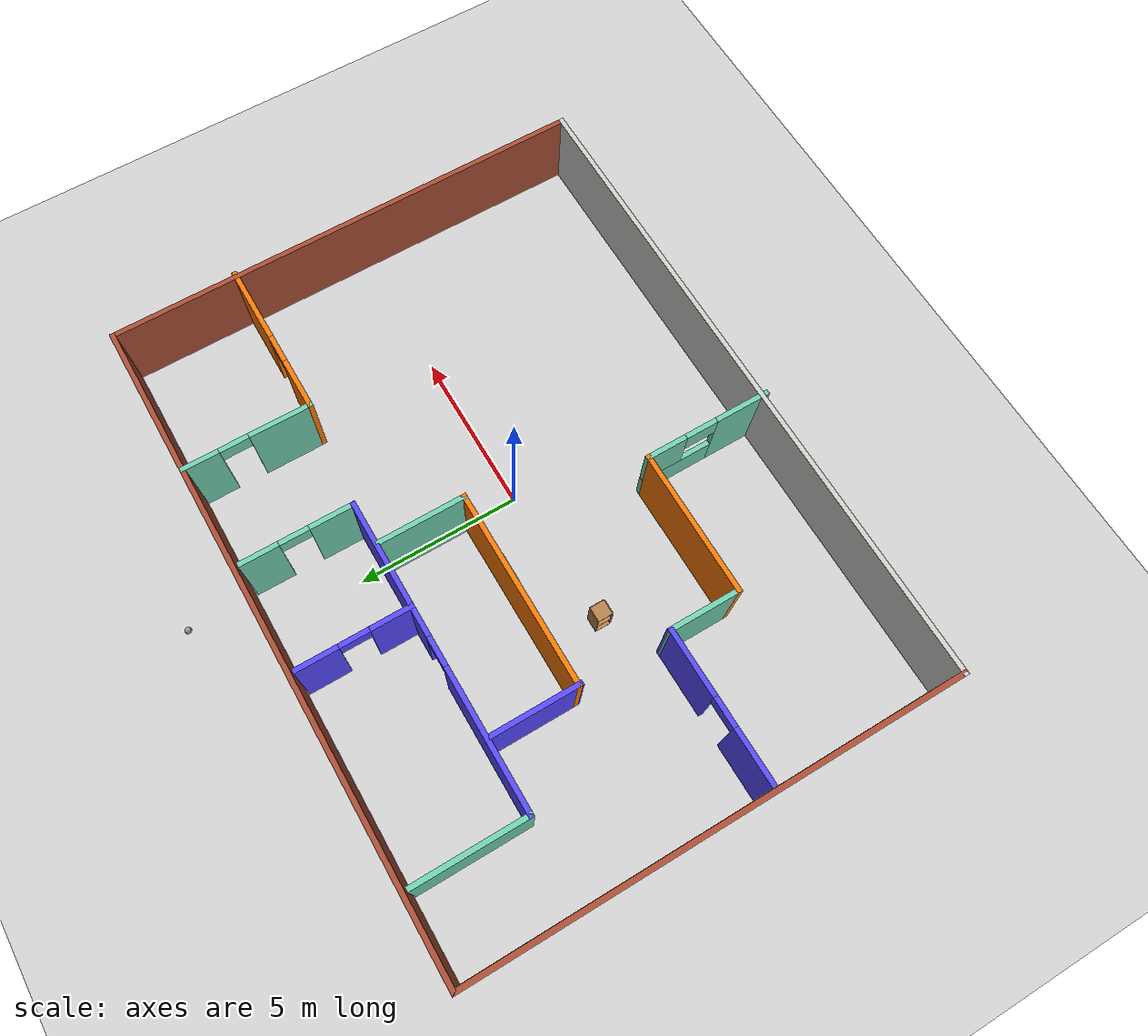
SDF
<sdf version="1.6">
 <world name="default">
  <plugin name="welcome_message" filename="libwelcome_message.so"/>
  <light name="sun" type="directional">
   <pose>0 0 10 0 -0 0</pose>
   <diffuse>0.8 0.8 0.8 1</diffuse>
   <specular>0.2 0.2 0.2 1</specular>
   <attenuation>
    <range>1000</range>
    <constant>0.9</constant>
    <linear>0.01</linear>
    <quadratic>0.001</quadratic>
   </attenuation>
   <direction>-0.5 0.1 -0.9</direction>
  </light>
  <model name="ground_plane">
   <static>1</static>
   <link name="link">
    <collision name="collision">
     <geometry><plane><normal>0 0 1</normal><size>100 100</size></plane></geometry>
     <surface>
      <contact><collide_bitmask>65535</collide_bitmask></contact>
      <friction><ode><mu>100</mu><mu2>50</mu2></ode></friction>
     </surface>
    </collision>
    <visual name="visual">
     <cast_shadows>0</cast_shadows>
     <geometry><plane><normal>0 0 1</normal><size>100 100</size></plane></geometry>
     <material>
      <script><uri>file://media/materials/scripts/gazebo.material</uri><name>Gazebo/Grey</name></script>
     </material>
    </visual>
   </link>
  </model>
  <gravity>0 0 -9.8</gravity>
  <magnetic_field>6e-06 2.3e-05 -4.2e-05</magnetic_field>
  <atmosphere type="adiabatic"/>
  <physics name="default_physics" default="0" type="ode">
   <max_step_size>0.001</max_step_size>
   <real_time_factor>1</real_time_factor>
   <real_time_update_rate>1000</real_time_update_rate>
  </physics>
  <scene><ambient>0.4 0.4 0.4 1</ambient><background>0.7 0.7 0.7 1</background><shadows>1</shadows></scene>
  <spherical_coordinates>
   <surface_model>EARTH_WGS84</surface_model>
   <latitude_deg>0</latitude_deg>
   <longitude_deg>0</longitude_deg>
   <elevation>0</elevation>
   <heading_deg>0</heading_deg>
  </spherical_coordinates>
  <model name="model">
   <pose>-0.67682 0.34069 0 0 -0 0</pose>
   <link name="Door_2">
    <collision name="Door_2_Collision">
     <geometry><box><size>0.9 0.17 2</size></box></geometry>
     <pose>0 0 1 0 -0 0</pose>
    </collision>
    <visual name="Door_2_Visual">
     <pose>0 0 1 0 -0 0</pose>
     <geometry><box><size>0.9 0.17 2</size></box></geometry>
     <material>
      <script><uri>file://media/materials/scripts/gazebo.material</uri><name>Gazebo/Grey</name></script>
     </material>
    </visual>
    <pose>-3.49247 -3.75318 0 0 -0 0</pose>
   </link>
   <link name="Door_6">
    <collision name="Door_6_Collision">
     <geometry><box><size>0.9 0.17 2</size></box></geometry>
     <pose>0 0 1 0 -0 0</pose>
    </collision>
    <visual name="Door_6_Visual">
     <pose>0 0 1 0 -0 0</pose>
     <geometry><box><size>0.9 0.17 2</size></box></geometry>
     <material>
      <script><uri>file://media/materials/scripts/gazebo.material</uri><name>Gazebo/Grey</name></script>
     </material>
    </visual>
    <pose>-1.63965 1.18311 0 0 -0 0</pose>
   </link>
   <link name="Wall_0">
    <collision name="Wall_0_Collision">
     <geometry><box><size>15 0.15 2.5</size></box></geometry>
     <pose>0 0 1.25 0 -0 0</pose>
    </collision>
    <visual name="Wall_0_Visual">
     <pose>0 0 1.25 0 -0 0</pose>
     <geometry><box><size>15 0.15 2.5</size></box></geometry>
     <material>
      <script><uri>file://media/materials/scripts/gazebo.material</uri><name>Gazebo/Bricks</name></script>
      <ambient>1 1 1 1</ambient>
     </material>
     <meta><layer>0</layer></meta>
    </visual>
    <pose>-9.97782 0.060077 0 0 0 -1.5708</pose>
   </link>
   <link name="Wall_11">
    <pose>7.55283 3.6209 0 0 -0 3.14159</pose>
    <visual name="Wall_11_Visual_0">
     <pose>-1.27505 0 1.25 0 -0 0</pose>
     <geometry><box><size>2.4499 0.15 2.5</size></box></geometry>
     <material>
      <script><uri>file://media/materials/scripts/gazebo.material</uri><name>Gazebo/Grey</name></script>
      <ambient>0.996078 0.47451 0.0196078 1</ambient>
     </material>
     <meta><layer>0</layer></meta>
    </visual>
    <collision name="Wall_11_Collision_0">
     <geometry><box><size>2.4499 0.15 2.5</size></box></geometry>
     <pose>-1.27505 0 1.25 0 -0 0</pose>
    </collision>
    <visual name="Wall_11_Visual_1">
     <pose>1.67495 0 1.25 0 -0 0</pose>
     <geometry><box><size>1.6501 0.15 2.5</size></box></geometry>
     <material>
      <script><uri>file://media/materials/scripts/gazebo.material</uri><name>Gazebo/Grey</name></script>
      <ambient>0.996078 0.47451 0.0196078 1</ambient>
     </material>
     <meta><layer>0</layer></meta>
    </visual>
    <collision name="Wall_11_Collision_1">
     <geometry><box><size>1.6501 0.15 2.5</size></box></geometry>
     <pose>1.67495 0 1.25 0 -0 0</pose>
    </collision>
    <visual name="Wall_11_Visual_2">
     <pose>0.399904 0 2.25 0 -0 0</pose>
     <geometry><box><size>0.9 0.15 0.5</size></box></geometry>
     <material>
      <script><uri>file://media/materials/scripts/gazebo.material</uri><name>Gazebo/Grey</name></script>
      <ambient>0.996078 0.47451 0.0196078 1</ambient>
     </material>
     <meta><layer>0</layer></meta>
    </visual>
    <collision name="Wall_11_Collision_2">
     <geometry><box><size>0.9 0.15 0.5</size></box></geometry>
     <pose>0.399904 0 2.25 0 -0 0</pose>
    </collision>
   </link>
   <link name="Wall_18">
    <pose>5.12784 5.5459 0 0 -0 1.5708</pose>
    <visual name="Wall_18_Visual_0">
     <pose>-1.02285 0 1.25 0 -0 0</pose>
     <geometry><box><size>1.9543 0.15 2.5</size></box></geometry>
     <material>
      <script><uri>file://media/materials/scripts/gazebo.material</uri><name>Gazebo/Grey</name></script>
      <ambient>0.435294 0.796078 0.67451 1</ambient>
     </material>
     <meta><layer>0</layer></meta>
    </visual>
    <collision name="Wall_18_Collision_0">
     <geometry><box><size>1.9543 0.15 2.5</size></box></geometry>
     <pose>-1.02285 0 1.25 0 -0 0</pose>
    </collision>
    <visual name="Wall_18_Visual_1">
     <pose>1.42715 0 1.25 0 -0 0</pose>
     <geometry><box><size>1.1457 0.15 2.5</size></box></geometry>
     <material>
      <script><uri>file://media/materials/scripts/gazebo.material</uri><name>Gazebo/Grey</name></script>
      <ambient>0.435294 0.796078 0.67451 1</ambient>
     </material>
     <meta><layer>0</layer></meta>
    </visual>
    <collision name="Wall_18_Collision_1">
     <geometry><box><size>1.1457 0.15 2.5</size></box></geometry>
     <pose>1.42715 0 1.25 0 -0 0</pose>
    </collision>
    <visual name="Wall_18_Visual_2">
     <pose>0.404303 0 2.25 0 -0 0</pose>
     <geometry><box><size>0.9 0.15 0.5</size></box></geometry>
     <material>
      <script><uri>file://media/materials/scripts/gazebo.material</uri><name>Gazebo/Grey</name></script>
      <ambient>0.435294 0.796078 0.67451 1</ambient>
     </material>
     <meta><layer>0</layer></meta>
    </visual>
    <collision name="Wall_18_Collision_2">
     <geometry><box><size>0.9 0.15 0.5</size></box></geometry>
     <pose>0.404303 0 2.25 0 -0 0</pose>
    </collision>
   </link>
   <link name="Wall_22">
    <pose>-0.922889 -5.56018 0 0 -0 1.5708</pose>
    <visual name="Wall_22_Visual_0">
     <pose>-1.14184 0 1.25 0 -0 0</pose>
     <geometry><box><size>1.71632 0.15 2.5</size></box></geometry>
     <material>
      <script><uri>file://media/materials/scripts/gazebo.material</uri><name>Gazebo/Grey</name></script>
      <ambient>0.435294 0.796078 0.67451 1</ambient>
     </material>
     <meta><layer>0</layer></meta>
    </visual>
    <collision name="Wall_22_Collision_0">
     <geometry><box><size>1.71632 0.15 2.5</size></box></geometry>
     <pose>-1.14184 0 1.25 0 -0 0</pose>
    </collision>
    <visual name="Wall_22_Visual_1">
     <pose>0.858158 0 0.5 0 -0 0</pose>
     <geometry><box><size>2.28368 0.15 1</size></box></geometry>
     <material>
      <script><uri>file://media/materials/scripts/gazebo.material</uri><name>Gazebo/Grey</name></script>
      <ambient>0.435294 0.796078 0.67451 1</ambient>
     </material>
     <meta><layer>0</layer></meta>
    </visual>
    <collision name="Wall_22_Collision_1">
     <geometry><box><size>2.28368 0.15 1</size></box></geometry>
     <pose>0.858158 0 0.5 0 -0 0</pose>
    </collision>
    <visual name="Wall_22_Visual_2">
     <pose>1.35816 0 1.75 0 -0 0</pose>
     <geometry><box><size>1.28368 0.15 1.5</size></box></geometry>
     <material>
      <script><uri>file://media/materials/scripts/gazebo.material</uri><name>Gazebo/Grey</name></script>
      <ambient>0.435294 0.796078 0.67451 1</ambient>
     </material>
     <meta><layer>0</layer></meta>
    </visual>
    <collision name="Wall_22_Collision_2">
     <geometry><box><size>1.28368 0.15 1.5</size></box></geometry>
     <pose>1.35816 0 1.75 0 -0 0</pose>
    </collision>
    <visual name="Wall_22_Visual_3">
     <pose>0.216316 0 2.15 0 -0 0</pose>
     <geometry><box><size>1 0.15 0.7</size></box></geometry>
     <material>
      <script><uri>file://media/materials/scripts/gazebo.material</uri><name>Gazebo/Grey</name></script>
      <ambient>0.435294 0.796078 0.67451 1</ambient>
     </material>
     <meta><layer>0</layer></meta>
    </visual>
    <collision name="Wall_22_Collision_3">
     <geometry><box><size>1 0.15 0.7</size></box></geometry>
     <pose>0.216316 0 2.15 0 -0 0</pose>
    </collision>
   </link>
   <link name="Wall_23">
    <collision name="Wall_23_Collision">
     <geometry><box><size>4.5 0.15 2.5</size></box></geometry>
     <pose>0 0 1.25 0 -0 0</pose>
    </collision>
    <visual name="Wall_23_Visual">
     <pose>0 0 1.25 0 -0 0</pose>
     <geometry><box><size>4.5 0.15 2.5</size></box></geometry>
     <material>
      <script><uri>file://media/materials/scripts/gazebo.material</uri><name>Gazebo/Grey</name></script>
      <ambient>0.996078 0.47451 0.0196078 1</ambient>
     </material>
     <meta><layer>0</layer></meta>
    </visual>
    <pose>-3.09789 -3.63518 0 0 -0 3.14159</pose>
   </link>
   <link name="Wall_24">
    <collision name="Wall_24_Collision">
     <geometry><box><size>2.25 0.15 2.5</size></box></geometry>
     <pose>0 0 1.25 0 -0 0</pose>
    </collision>
    <visual name="Wall_24_Visual">
     <pose>0 0 1.25 0 -0 0</pose>
     <geometry><box><size>2.25 0.15 2.5</size></box></geometry>
     <material>
      <script><uri>file://media/materials/scripts/gazebo.material</uri><name>Gazebo/Grey</name></script>
      <ambient>0.435294 0.796078 0.67451 1</ambient>
     </material>
     <meta><layer>0</layer></meta>
    </visual>
    <pose>-5.27289 -2.58518 0 0 -0 1.5708</pose>
   </link>
   <link name="Wall_25">
    <pose>-7.5423 -1.55522 0 0 0 -3.13277</pose>
    <visual name="Wall_25_Visual_0">
     <pose>-1.29743 0 1.25 0 -0 0</pose>
     <geometry><box><size>2.09415 0.15 2.5</size></box></geometry>
     <material>
      <script><uri>file://media/materials/scripts/gazebo.material</uri><name>Gazebo/Grey</name></script>
      <ambient>0.333333 0.286275 1 1</ambient>
     </material>
     <meta><layer>0</layer></meta>
    </visual>
    <collision name="Wall_25_Collision_0">
     <geometry><box><size>2.09415 0.15 2.5</size></box></geometry>
     <pose>-1.29743 0 1.25 0 -0 0</pose>
    </collision>
    <visual name="Wall_25_Visual_1">
     <pose>1.49707 0 1.25 0 -0 0</pose>
     <geometry><box><size>1.69485 0.15 2.5</size></box></geometry>
     <material>
      <script><uri>file://media/materials/scripts/gazebo.material</uri><name>Gazebo/Grey</name></script>
      <ambient>0.333333 0.286275 1 1</ambient>
     </material>
     <meta><layer>0</layer></meta>
    </visual>
    <collision name="Wall_25_Collision_1">
     <geometry><box><size>1.69485 0.15 2.5</size></box></geometry>
     <pose>1.49707 0 1.25 0 -0 0</pose>
    </collision>
    <visual name="Wall_25_Visual_2">
     <pose>0.199648 0 2.25 0 -0 0</pose>
     <geometry><box><size>0.9 0.15 0.5</size></box></geometry>
     <material>
      <script><uri>file://media/materials/scripts/gazebo.material</uri><name>Gazebo/Grey</name></script>
      <ambient>0.333333 0.286275 1 1</ambient>
     </material>
     <meta><layer>0</layer></meta>
    </visual>
    <collision name="Wall_25_Collision_2">
     <geometry><box><size>0.9 0.15 0.5</size></box></geometry>
     <pose>0.199648 0 2.25 0 -0 0</pose>
    </collision>
   </link>
   <link name="Wall_27">
    <collision name="Wall_27_Collision">
     <geometry><box><size>3.5 0.15 2.5</size></box></geometry>
     <pose>0 0 1.25 0 -0 0</pose>
    </collision>
    <visual name="Wall_27_Visual">
     <pose>0 0 1.25 0 -0 0</pose>
     <geometry><box><size>3.5 0.15 2.5</size></box></geometry>
     <material>
      <script><uri>file://media/materials/scripts/gazebo.material</uri><name>Gazebo/Grey</name></script>
      <ambient>0.435294 0.796078 0.67451 1</ambient>
     </material>
     <meta><layer>0</layer></meta>
    </visual>
    <pose>-7.44677 5.60899 0 0 0 -1.5708</pose>
   </link>
   <link name="Wall_28">
    <pose>-2.77177 3.93399 0 0 -0 0</pose>
    <visual name="Wall_28_Visual_0">
     <pose>-2.58907 0 1.25 0 -0 0</pose>
     <geometry><box><size>4.32185 0.15 2.5</size></box></geometry>
     <material>
      <script><uri>file://media/materials/scripts/gazebo.material</uri><name>Gazebo/Grey</name></script>
      <ambient>0.333333 0.286275 1 1</ambient>
     </material>
     <meta><layer>0</layer></meta>
    </visual>
    <collision name="Wall_28_Collision_0">
     <geometry><box><size>4.32185 0.15 2.5</size></box></geometry>
     <pose>-2.58907 0 1.25 0 -0 0</pose>
    </collision>
    <visual name="Wall_28_Visual_1">
     <pose>2.61093 0 1.25 0 -0 0</pose>
     <geometry><box><size>4.27815 0.15 2.5</size></box></geometry>
     <material>
      <script><uri>file://media/materials/scripts/gazebo.material</uri><name>Gazebo/Grey</name></script>
      <ambient>0.333333 0.286275 1 1</ambient>
     </material>
     <meta><layer>0</layer></meta>
    </visual>
    <collision name="Wall_28_Collision_1">
     <geometry><box><size>4.27815 0.15 2.5</size></box></geometry>
     <pose>2.61093 0 1.25 0 -0 0</pose>
    </collision>
    <visual name="Wall_28_Visual_2">
     <pose>0.021854 0 2.25 0 -0 0</pose>
     <geometry><box><size>0.9 0.15 0.5</size></box></geometry>
     <material>
      <script><uri>file://media/materials/scripts/gazebo.material</uri><name>Gazebo/Grey</name></script>
      <ambient>0.333333 0.286275 1 1</ambient>
     </material>
     <meta><layer>0</layer></meta>
    </visual>
    <collision name="Wall_28_Collision_2">
     <geometry><box><size>0.9 0.15 0.5</size></box></geometry>
     <pose>0.021854 0 2.25 0 -0 0</pose>
    </collision>
   </link>
   <link name="Wall_37">
    <pose>1.90323 5.60899 0 0 -0 1.5708</pose>
    <visual name="Wall_37_Visual_0">
     <pose>-1.04614 0 1.25 0 -0 0</pose>
     <geometry><box><size>1.40772 0.15 2.5</size></box></geometry>
     <material>
      <script><uri>file://media/materials/scripts/gazebo.material</uri><name>Gazebo/Grey</name></script>
      <ambient>0.435294 0.796078 0.67451 1</ambient>
     </material>
     <meta><layer>0</layer></meta>
    </visual>
    <collision name="Wall_37_Collision_0">
     <geometry><box><size>1.40772 0.15 2.5</size></box></geometry>
     <pose>-1.04614 0 1.25 0 -0 0</pose>
    </collision>
    <visual name="Wall_37_Visual_1">
     <pose>1.15386 0 1.25 0 -0 0</pose>
     <geometry><box><size>1.19228 0.15 2.5</size></box></geometry>
     <material>
      <script><uri>file://media/materials/scripts/gazebo.material</uri><name>Gazebo/Grey</name></script>
      <ambient>0.435294 0.796078 0.67451 1</ambient>
     </material>
     <meta><layer>0</layer></meta>
    </visual>
    <collision name="Wall_37_Collision_1">
     <geometry><box><size>1.19228 0.15 2.5</size></box></geometry>
     <pose>1.15386 0 1.25 0 -0 0</pose>
    </collision>
    <visual name="Wall_37_Visual_2">
     <pose>0.107722 0 2.25 0 -0 0</pose>
     <geometry><box><size>0.9 0.15 0.5</size></box></geometry>
     <material>
      <script><uri>file://media/materials/scripts/gazebo.material</uri><name>Gazebo/Grey</name></script>
      <ambient>0.435294 0.796078 0.67451 1</ambient>
     </material>
     <meta><layer>0</layer></meta>
    </visual>
    <collision name="Wall_37_Collision_2">
     <geometry><box><size>0.9 0.15 0.5</size></box></geometry>
     <pose>0.107722 0 2.25 0 -0 0</pose>
    </collision>
   </link>
   <link name="Wall_39">
    <pose>-1.36924 5.61751 0 0 -0 1.5708</pose>
    <visual name="Wall_39_Visual_0">
     <pose>-1.1015 0 1.25 0 -0 0</pose>
     <geometry><box><size>1.297 0.15 2.5</size></box></geometry>
     <material>
      <script><uri>file://media/materials/scripts/gazebo.material</uri><name>Gazebo/Grey</name></script>
      <ambient>0.333333 0.286275 1 1</ambient>
     </material>
     <meta><layer>0</layer></meta>
    </visual>
    <collision name="Wall_39_Collision_0">
     <geometry><box><size>1.297 0.15 2.5</size></box></geometry>
     <pose>-1.1015 0 1.25 0 -0 0</pose>
    </collision>
    <visual name="Wall_39_Visual_1">
     <pose>1.0985 0 1.25 0 -0 0</pose>
     <geometry><box><size>1.303 0.15 2.5</size></box></geometry>
     <material>
      <script><uri>file://media/materials/scripts/gazebo.material</uri><name>Gazebo/Grey</name></script>
      <ambient>0.333333 0.286275 1 1</ambient>
     </material>
     <meta><layer>0</layer></meta>
    </visual>
    <collision name="Wall_39_Collision_1">
     <geometry><box><size>1.303 0.15 2.5</size></box></geometry>
     <pose>1.0985 0 1.25 0 -0 0</pose>
    </collision>
    <visual name="Wall_39_Visual_2">
     <pose>-0.002999 0 2.25 0 -0 0</pose>
     <geometry><box><size>0.9 0.15 0.5</size></box></geometry>
     <material>
      <script><uri>file://media/materials/scripts/gazebo.material</uri><name>Gazebo/Grey</name></script>
      <ambient>0.333333 0.286275 1 1</ambient>
     </material>
     <meta><layer>0</layer></meta>
    </visual>
    <collision name="Wall_39_Collision_2">
     <geometry><box><size>0.9 0.15 0.5</size></box></geometry>
     <pose>-0.002999 0 2.25 0 -0 0</pose>
    </collision>
   </link>
   <link name="Wall_43">
    <collision name="Wall_43_Collision">
     <geometry><box><size>2.75 0.15 2.5</size></box></geometry>
     <pose>0 0 1.25 0 -0 0</pose>
    </collision>
    <visual name="Wall_43_Visual">
     <pose>0 0 1.25 0 -0 0</pose>
     <geometry><box><size>2.75 0.15 2.5</size></box></geometry>
     <material>
      <script><uri>file://media/materials/scripts/gazebo.material</uri><name>Gazebo/Grey</name></script>
      <ambient>0.435294 0.796078 0.67451 1</ambient>
     </material>
     <meta><layer>0</layer></meta>
    </visual>
    <pose>0.601894 2.56206 0 0 0 -1.5708</pose>
   </link>
   <link name="Wall_44">
    <collision name="Wall_44_Collision">
     <geometry><box><size>6.05437 0.15 2.5</size></box></geometry>
     <pose>0 0 1.25 0 -0 0</pose>
    </collision>
    <visual name="Wall_44_Visual">
     <pose>0 0 1.25 0 -0 0</pose>
     <geometry><box><size>6.05437 0.15 2.5</size></box></geometry>
     <material>
      <script><uri>file://media/materials/scripts/gazebo.material</uri><name>Gazebo/Grey</name></script>
      <ambient>0.996078 0.47451 0.0196078 1</ambient>
     </material>
     <meta><layer>0</layer></meta>
    </visual>
    <pose>-2.3502 1.26206 0 0 -0 3.14159</pose>
   </link>
   <link name="Wall_47">
    <collision name="Wall_47_Collision">
     <geometry><box><size>2.75 0.15 2.5</size></box></geometry>
     <pose>0 0 1.25 0 -0 0</pose>
    </collision>
    <visual name="Wall_47_Visual">
     <pose>0 0 1.25 0 -0 0</pose>
     <geometry><box><size>2.75 0.15 2.5</size></box></geometry>
     <material>
      <script><uri>file://media/materials/scripts/gazebo.material</uri><name>Gazebo/Grey</name></script>
      <ambient>0.333333 0.286275 1 1</ambient>
     </material>
     <meta><layer>0</layer></meta>
    </visual>
    <pose>-5.30229 2.5158 0 0 -0 1.5708</pose>
   </link>
   <link name="Wall_5">
    <collision name="Wall_5_Collision">
     <geometry><box><size>20 0.15 2.5</size></box></geometry>
     <pose>0 0 1.25 0 -0 0</pose>
    </collision>
    <visual name="Wall_5_Visual">
     <pose>0 0 1.25 0 -0 0</pose>
     <geometry><box><size>20 0.15 2.5</size></box></geometry>
     <material>
      <script><uri>file://media/materials/scripts/gazebo.material</uri><name>Gazebo/CeilingTiled</name></script>
      <ambient>0.996078 0.47451 0.0196078 1</ambient>
     </material>
     <meta><layer>0</layer></meta>
    </visual>
    <pose>-0.052834 -7.36503 0 0 -0 0</pose>
   </link>
   <link name="Wall_7">
    <collision name="Wall_7_Collision">
     <geometry><box><size>15 0.15 2.5</size></box></geometry>
     <pose>0 0 1.25 0 -0 0</pose>
    </collision>
    <visual name="Wall_7_Visual">
     <pose>0 0 1.25 0 -0 0</pose>
     <geometry><box><size>15 0.15 2.5</size></box></geometry>
     <material>
      <script><uri>file://media/materials/scripts/gazebo.material</uri><name>Gazebo/Bricks</name></script>
      <ambient>1 1 1 1</ambient>
     </material>
     <meta><layer>0</layer></meta>
    </visual>
    <pose>9.87218 0.060077 0 0 -0 1.57079</pose>
   </link>
   <link name="Wall_9">
    <collision name="Wall_9_Collision">
     <geometry><box><size>20 0.15 2.5</size></box></geometry>
     <pose>0 0 1.25 0 -0 0</pose>
    </collision>
    <visual name="Wall_9_Visual">
     <pose>0 0 1.25 0 -0 0</pose>
     <geometry><box><size>20 0.15 2.5</size></box></geometry>
     <material>
      <script><uri>file://media/materials/scripts/gazebo.material</uri><name>Gazebo/Bricks</name></script>
      <ambient>1 1 1 1</ambient>
     </material>
     <meta><layer>0</layer></meta>
    </visual>
    <pose>-0.052798 7.48518 0 0 -0 3.14159</pose>
   </link>
   <static>1</static>
  </model>
  <model name="cabinet">
   <static>1</static>
   <link name="cabinet_bottom_plate">
    <inertial>
     <pose>0 0 -1 0 -0 0</pose>
     <inertia><ixx>2.05</ixx><ixy>0</ixy><ixz>0</ixz><iyy>2.05</iyy><iyz>0</iyz><izz>2.05</izz></inertia>
     <mass>25</mass>
    </inertial>
    <collision name="cabinet_bottom_plate_geom">
     <pose>0 0 0.01 0 -0 0</pose>
     <geometry><box><size>0.45 0.45 0.02</size></box></geometry>
    </collision>
    <visual name="cabinet_bottom_plate_geom_visual">
     <pose>0 0 0.01 0 -0 0</pose>
     <geometry><box><size>0.45 0.45 0.02</size></box></geometry>
     <material>
      <script><uri>file://media/materials/scripts/gazebo.material</uri><name>Gazebo/Wood</name></script>
     </material>
    </visual>
    <collision name="cabinet_bottom_plate_geom_cabinet_back_plate">
     <pose>0.235 0 0.51 0 -0 0</pose>
     <geometry><box><size>0.02 0.45 1.02</size></box></geometry>
    </collision>
    <visual name="cabinet_bottom_plate_geom_cabinet_back_plate_visual">
     <pose>0.235 0 0.51 0 -0 0</pose>
     <geometry><box><size>0.02 0.45 1.02</size></box></geometry>
     <material>
      <script><uri>file://media/materials/scripts/gazebo.material</uri><name>Gazebo/Wood</name></script>
     </material>
    </visual>
    <collision name="cabinet_bottom_plate_geom_cabinet_left_plate">
     <pose>0 0.235 0.51 0 -0 0</pose>
     <geometry><box><size>0.45 0.02 1.02</size></box></geometry>
    </collision>
    <visual name="cabinet_bottom_plate_geom_cabinet_left_plate_visual">
     <pose>0 0.235 0.51 0 -0 0</pose>
     <geometry><box><size>0.45 0.02 1.02</size></box></geometry>
     <material>
      <script><uri>file://media/materials/scripts/gazebo.material</uri><name>Gazebo/Wood</name></script>
     </material>
    </visual>
    <collision name="cabinet_bottom_plate_geom_cabinet_middle_plate">
     <pose>0 0 0.51 0 -0 0</pose>
     <geometry><box><size>0.45 0.45 0.02</size></box></geometry>
    </collision>
    <visual name="cabinet_bottom_plate_geom_cabinet_middle_plate_visual">
     <pose>0 0 0.51 0 -0 0</pose>
     <geometry><box><size>0.45 0.45 0.02</size></box></geometry>
     <material>
      <script><uri>file://media/materials/scripts/gazebo.material</uri><name>Gazebo/Wood</name></script>
     </material>
    </visual>
    <collision name="cabinet_bottom_plate_geom_cabinet_right_plate">
     <pose>0 -0.235 0.51 0 -0 0</pose>
     <geometry><box><size>0.45 0.02 1.02</size></box></geometry>
    </collision>
    <visual name="cabinet_bottom_plate_geom_cabinet_right_plate_visual">
     <pose>0 -0.235 0.51 0 -0 0</pose>
     <geometry><box><size>0.45 0.02 1.02</size></box></geometry>
     <material>
      <script><uri>file://media/materials/scripts/gazebo.material</uri><name>Gazebo/Wood</name></script>
     </material>
    </visual>
    <collision name="cabinet_bottom_plate_geom_cabinet_top_plate">
     <pose>0 0 1.01 0 -0 0</pose>
     <geometry><box><size>0.45 0.45 0.02</size></box></geometry>
    </collision>
    <visual name="cabinet_bottom_plate_geom_cabinet_top_plate_visual">
     <pose>0 0 1.01 0 -0 0</pose>
     <geometry><box><size>0.45 0.45 0.02</size></box></geometry>
     <material>
      <script><uri>file://media/materials/scripts/gazebo.material</uri><name>Gazebo/Wood</name></script>
     </material>
    </visual>
   </link>
   <pose>-4.32629 -0.209928 0 0 -0 0</pose>
  </model>
  <model name="my_ball">
   <link name="link_0">
    <inertial>
     <mass>1</mass>
     <inertia><ixx>0.1</ixx><ixy>0</ixy><ixz>0</ixz><iyy>0.1</iyy><iyz>0</iyz><izz>0.1</izz></inertia>
    </inertial>
    <visual name="visual">
     <geometry><sphere><radius>0.1</radius></sphere></geometry>
     <material>
      <lighting>1</lighting>
      <script><uri>file://media/materials/scripts/gazebo.material</uri><name>Gazebo/Grey</name></script>
      <shader type="pixel"><normal_map>__default__</normal_map></shader>
      <ambient>1 1 1 1</ambient>
      <diffuse>1 1 1 1</diffuse>
      <specular>1 1 1 1</specular>
      <emissive>1 1 1 1</emissive>
     </material>
    </visual>
    <collision name="collision">
     <geometry><sphere><radius>0.1</radius></sphere></geometry>
     <surface>
      <friction>
       <ode><mu>1</mu><mu2>1</mu2><fdir1>0 0 0</fdir1><slip1>0</slip1><slip2>0</slip2></ode>
       <torsional>
        <coefficient>1</coefficient>
        <patch_radius>0</patch_radius>
        <surface_radius>0</surface_radius>
        <use_patch_radius>1</use_patch_radius>
        <ode><slip>0</slip></ode>
       </torsional>
      </friction>
      <bounce><restitution_coefficient>0</restitution_coefficient><threshold>1e+06</threshold></bounce>
      <contact>
       <collide_without_contact>0</collide_without_contact>
       <collide_without_contact_bitmask>1</collide_without_contact_bitmask>
       <collide_bitmask>1</collide_bitmask>
       <ode>
        <soft_cfm>0</soft_cfm>
        <soft_erp>0.2</soft_erp>
        <kp>1e+13</kp>
        <kd>1</kd>
        <max_vel>0.01</max_vel>
        <min_depth>0</min_depth>
       </ode>
       <bullet>
        <split_impulse>1</split_impulse>
        <split_impulse_penetration_threshold>-0.01</split_impulse_penetration_threshold>
        <soft_cfm>0</soft_cfm>
        <soft_erp>0.2</soft_erp>
        <kp>1e+13</kp>
        <kd>1</kd>
       </bullet>
      </contact>
     </surface>
    </collision>
   </link>
   <static>0</static>
   <pose>1.16797 9.83023 0.1 0 -0 0</pose>
  </model>
 </world>
</sdf>
